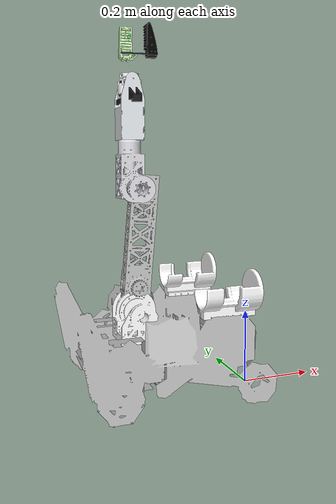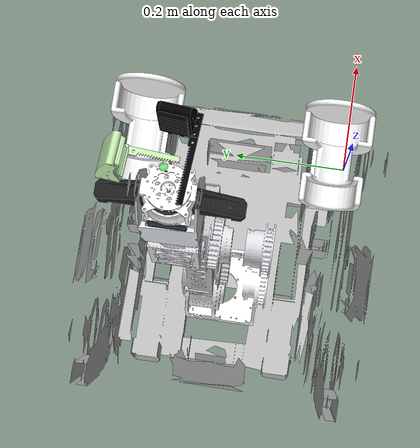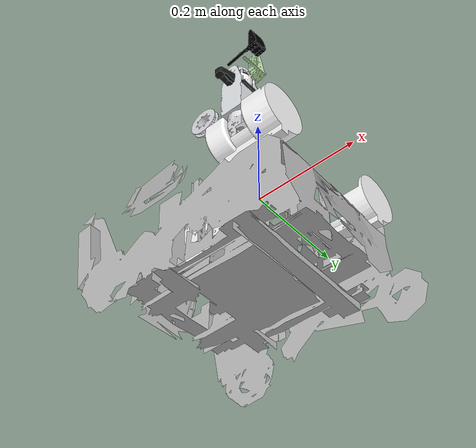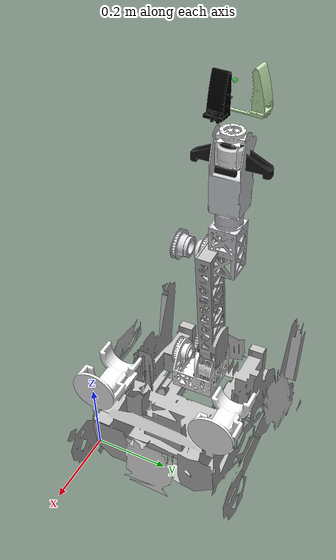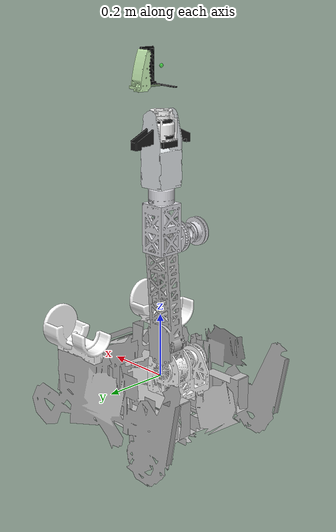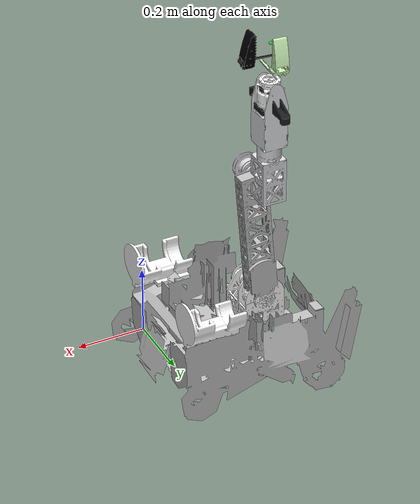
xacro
<?xml version="1.0"?>
<robot xmlns:xacro="http://www.ros.org/wiki/xacro" name="engineer_v4">
    <xacro:arg name="initial_positions_file" default="initial_positions.yaml" />

    <!-- Import engineer_v4 urdf file -->
    <xacro:include filename="$(find engineer_description)/urdf/engineer_v4.urdf" />

    <!-- Import control_xacro -->
    <xacro:include filename="engineer_v4.ros2_control.xacro" />

    <xacro:engineer_v4_ros2_control name="FakeSystem" initial_positions_file="$(arg initial_positions_file)"/>

</robot>

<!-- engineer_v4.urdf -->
<robot
  name="engineer_v4">
  <link
    name="base_link">
    <visual>
      <origin
        xyz="0 0 0"
        rpy="0 0 0" />
      <geometry>
        <mesh
          filename="package://engineer_description/dae/base_link.dae" />
      </geometry>
      <material
        name="">
        <color
          rgba="0.752941176470588 0.752941176470588 0.752941176470588 1" />
      </material>
    </visual>
    <collision>
      <origin
        xyz="0 0 0"
        rpy="0 0 0" />
      <geometry>
        <mesh
          filename="package://engineer_description/collision_dae/base_link.dae" />
      </geometry>
    </collision>
  </link>
  <link
    name="first_slot_link">
    <inertial>
      <origin
        xyz="-0.0299725860567126 -0.0210010541511428 0.000555965757073434"
        rpy="0 0 0" />
      <mass
        value="0.457371475868407" />
      <inertia
        ixx="0.0016314209173607"
        ixy="0.00026727505312052"
        ixz="-7.66197935861787E-05"
        iyy="0.00078447026147815"
        iyz="2.16490673979245E-05"
        izz="0.0016245960496577" />
    </inertial>
    <visual>
      <origin
        xyz="0 0 0"
        rpy="0 0 0" />
      <geometry>
        <mesh
          filename="package://engineer_description/dae/first_slot_link.dae" />
      </geometry>
      <material
        name="">
        <color
          rgba="1 1 1 1" />
      </material>
    </visual>
    <collision>
      <origin
        xyz="0 0 0"
        rpy="0 0 0" />
      <geometry>
        <mesh
          filename="package://engineer_description/collision_dae/first_slot_link.dae" />
      </geometry>
    </collision>
  </link>
  <joint
    name="first_slot_joint"
    type="fixed">
    <origin
      xyz="-0.0472031541832538 0.0300245045193264 0.252923029552021"
      rpy="1.5707963267949 -1.5707963267949 0" />
    <parent
      link="base_link" />
    <child
      link="first_slot_link" />
  </joint>
  <link
    name="second_slot_link">
    <inertial>
      <origin
        xyz="-0.021001166224167 0.0299723666797443 -0.00055561544707089"
        rpy="0 0 0" />
      <mass
        value="0.457374603004739" />
      <inertia
        ixx="0.000784480991192641"
        ixy="-0.000267276658814494"
        ixz="-2.16458688800345E-05"
        iyy="0.00163143018140389"
        iyz="-7.66141894052885E-05"
        izz="0.00162460052222523" />
    </inertial>
    <visual>
      <origin
        xyz="0 0 0"
        rpy="0 0 0" />
      <geometry>
        <mesh
          filename="package://engineer_description/dae/second_slot_link.dae" />
      </geometry>
      <material
        name="">
        <color
          rgba="1 1 1 1" />
      </material>
    </visual>
    <collision>
      <origin
        xyz="0 0 0"
        rpy="0 0 0" />
      <geometry>
        <mesh
          filename="package://engineer_description/collision_dae/second_slot_link.dae" />
      </geometry>
    </collision>
  </link>
  <joint
    name="second_slot_joint"
    type="fixed">
    <origin
      xyz="-0.0472031541832538 0.351024504519326 0.252923029552022"
      rpy="-1.5707963267949 0 3.14159265358979" />
    <parent
      link="base_link" />
    <child
      link="second_slot_link" />
  </joint>
  <link
    name="link1">
    <inertial>
      <origin
        xyz="-0.000357188269648423 0.000760222726987003 0.0730604097875659"
        rpy="0 0 0" />
      <mass
        value="1.2003246264795" />
      <inertia
        ixx="0.00110344971414483"
        ixy="4.36857458704849E-07"
        ixz="-1.06862312344359E-05"
        iyy="0.00168216080239019"
        iyz="8.42838995009528E-06"
        izz="0.00125099173868682" />
    </inertial>
    <visual>
      <origin
        xyz="0 0 0"
        rpy="0 0 0" />
      <geometry>
        <mesh
          filename="package://engineer_description/dae/link1.dae" />
      </geometry>
      <material
        name="">
        <color
          rgba="1 1 1 1" />
      </material>
    </visual>
    <collision>
      <origin
        xyz="0 0 0"
        rpy="0 0 0" />
      <geometry>
        <mesh
          filename="package://engineer_description/collision_dae/link1.dae" />
      </geometry>
    </collision>
  </link>
  <joint
    name="joint1"
    type="revolute">
    <origin
      xyz="-0.26120753672974 0.190524504519326 0.0574255541278649"
      rpy="0 0 3.14159265358979" />
    <parent
      link="base_link" />
    <child
      link="link1" />
    <axis
      xyz="0 0 1" />
    <limit
      lower="-3.14"
      upper="3.14"
      effort="0"
      velocity="0" />
  </joint>
  <link
    name="link2">
    <inertial>
      <origin
        xyz="0.196899648904097 -6.8962282289059E-05 0.0232173591328277"
        rpy="0 0 0" />
      <mass
        value="0.813392084625707" />
      <inertia
        ixx="0.000673036789229952"
        ixy="9.0752917954777E-08"
        ixz="-5.63337289441532E-05"
        iyy="0.0076831561117122"
        iyz="1.5848153385153E-07"
        izz="0.00815581445851113" />
    </inertial>
    <visual>
      <origin
        xyz="0 0 0"
        rpy="0 0 0" />
      <geometry>
        <mesh
          filename="package://engineer_description/dae/link2.dae" />
      </geometry>
      <material
        name="">
        <color
          rgba="0.752941176470588 0.752941176470588 0.752941176470588 1" />
      </material>
    </visual>
    <collision>
      <origin
        xyz="0 0 0"
        rpy="0 0 0" />
      <geometry>
        <mesh
          filename="package://engineer_description/collision_dae/link2.dae" />
      </geometry>
    </collision>
  </link>
  <joint
    name="joint2"
    type="revolute">
    <origin
      xyz="0 0 0.0910000000000011"
      rpy="-1.5707963267949 -1.568 0" />
    <parent
      link="link1" />
    <child
      link="link2" />
    <axis
      xyz="0 0 -1" />
    <limit
      lower="-0.9888"
      upper="1.2000"
      effort="0"
      velocity="0" />
  </joint>
  <link
    name="link3">
    <inertial>
      <origin
        xyz="-0.0183011171276036 -0.0564030679655175 0.0343124536185257"
        rpy="0 0 0" />
      <mass
        value="0.799120380289198" />
      <inertia
        ixx="0.000564646098922074"
        ixy="-1.38701383125454E-05"
        ixz="-1.42774820952325E-06"
        iyy="0.000525908835793181"
        iyz="-5.04104927677511E-06"
        izz="0.000668018718919332" />
    </inertial>
    <visual>
      <origin
        xyz="0 0 0"
        rpy="0 0 0" />
      <geometry>
        <mesh
          filename="package://engineer_description/dae/link3.dae" />
      </geometry>
      <material
        name="">
        <color
          rgba="0.866666666666667 0.866666666666667 0.890196078431372 1" />
      </material>
    </visual>
    <collision>
      <origin
        xyz="0 0 0"
        rpy="0 0 0" />
      <geometry>
        <mesh
          filename="package://engineer_description/collision_dae/link3.dae" />
      </geometry>
    </collision>
  </link>
  <joint
    name="joint3"
    type="revolute">
    <origin
      xyz="0.389999999999999 0 0"
      rpy="-3.14159265358979 0 -1.89" />
    <parent
      link="link2" />
    <child
      link="link3" />
    <axis
      xyz="0 0 1" />
    <limit
      lower="-2.8624"
      upper="2.6543"
      effort="0"
      velocity="0" />
  </joint>
  <link
    name="link4">
    <inertial>
      <origin
        xyz="-1.85366305129886E-05 0.00353819121598634 -0.210577010456394"
        rpy="0 0 0" />
      <mass
        value="0.451620229714316" />
      <inertia
        ixx="0.000450940900760466"
        ixy="-5.15815844889911E-08"
        ixz="-2.49726005905619E-08"
        iyy="0.000475467864605353"
        iyz="5.42674576797712E-10"
        izz="0.000173374319286848" />
    </inertial>
    <visual>
      <origin
        xyz="0 0 0"
        rpy="0 0 0" />
      <geometry>
        <mesh
          filename="package://engineer_description/dae/link4.dae" />
      </geometry>
      <material
        name="">
        <color
          rgba="0.898039215686275 0.917647058823529 0.929411764705882 1" />
      </material>
    </visual>
    <collision>
      <origin
        xyz="0 0 0"
        rpy="0 0 0" />
      <geometry>
        <mesh
          filename="package://engineer_description/collision_dae/link4.dae" />
      </geometry>
    </collision>
  </link>
  <joint
    name="joint4"
    type="revolute">
    <origin
      xyz="0 0 0.0591999999999989"
      rpy="1.5707963267949 0 2.82801601798317" />
    <parent
      link="link3" />
    <child
      link="link4" />
    <axis
      xyz="0 0 -1" />
    <limit
      lower="-3.14"
      upper="3.14"
      effort="0"
      velocity="0" />
  </joint>
  <link
    name="link5">
    <inertial>
      <origin
        xyz="0.0236461854249562 0.000252585259627791 -3.10582093318579E-06"
        rpy="0 0 0" />
      <mass
        value="0.386292385114177" />
      <inertia
        ixx="0.000206580198244635"
        ixy="1.16898826944609E-07"
        ixz="-1.22627594636964E-08"
        iyy="0.000128593321208887"
        iyz="-3.66505131431251E-09"
        izz="0.000117816851749595" />
    </inertial>
    <visual>
      <origin
        xyz="0 0 0"
        rpy="0 0 0" />
      <geometry>
        <mesh
          filename="package://engineer_description/dae/link5.dae" />
      </geometry>
      <material
        name="">
        <color
          rgba="1 1 1 1" />
      </material>
    </visual>
    <collision>
      <origin
        xyz="0 0 0"
        rpy="0 0 0" />
      <geometry>
        <mesh
          filename="package://engineer_description/collision_dae/link5.dae" />
      </geometry>
    </collision>
  </link>
  <joint
    name="joint5"
    type="revolute">
    <origin
      xyz="0 0 -0.314999999999995"
      rpy="1.5707963267949 -1.5707963267949 0" />
    <parent
      link="link4" />
    <child
      link="link5" />
    <axis
      xyz="0 0 -1" />
    <limit
      lower="-1.6828"
      upper="1.6828"
      effort="0"
      velocity="0" />
  </joint>
  <link
    name="link6">
    <inertial>
      <origin
        xyz="-2.92607973814696E-06 -2.88445725311615E-05 0.0543651305617022"
        rpy="0 0 0" />
      <mass
        value="0.288814280860144" />
      <inertia
        ixx="0.000215298648963599"
        ixy="-1.1564148562091E-05"
        ixz="-2.94525426553043E-09"
        iyy="7.55153561166776E-05"
        iyz="-4.25732713011413E-08"
        izz="0.000255880381587993" />
    </inertial>
    <visual>
      <origin
        xyz="0 0 0"
        rpy="0 0 0" />
      <geometry>
        <mesh
          filename="package://engineer_description/dae/link6.dae" />
      </geometry>
      <material
        name="">
        <color
          rgba="0.113725490196078 0.113725490196078 0.113725490196078 1" />
      </material>
    </visual>
    <collision>
      <origin
        xyz="0 0 0"
        rpy="0 0 0" />
      <geometry>
        <mesh
          filename="package://engineer_description/collision_dae/link6.dae" />
      </geometry>
    </collision>
  </link>
  <joint
    name="joint6"
    type="revolute">
    <origin
      xyz="0 0 0"
      rpy="3.13387314293277 1.5707963267949 0" />
    <parent
      link="link5" />
    <child
      link="link6" />
    <axis
      xyz="0 0 1" />
    <limit
      lower="-3.14"
      upper="3.14"
      effort="0"
      velocity="0" />
  </joint>
  <link
    name="right_finger_link">
    <inertial>
      <origin
        xyz="0.061259614914889 -0.00106641408212199 0.0351652091113552"
        rpy="0 0 0" />
      <mass
        value="0.0874237376139129" />
      <inertia
        ixx="3.87878846405327E-05"
        ixy="-5.98747994572176E-08"
        ixz="3.56630615088067E-06"
        iyy="4.0710808114335E-05"
        iyz="8.07405202409304E-09"
        izz="1.30816147228006E-05" />
    </inertial>
    <visual>
      <origin
        xyz="0 0 0"
        rpy="0 0 0" />
      <geometry>
        <mesh
          filename="package://engineer_description/dae/right_finger_link.dae" />
      </geometry>
      <material
        name="">
        <color
          rgba="0 0 0 1" />
      </material>
    </visual>
    <collision>
      <origin
        xyz="0 0 0"
        rpy="0 0 0" />
      <geometry>
        <mesh
          filename="package://engineer_description/collision_dae/right_finger_link.dae" />
      </geometry>
    </collision>
  </link>
  <joint
    name="right_finger_joint"
    type="prismatic">
    <origin
      xyz="0 0 0.076"
      rpy="0 0 -1.6526" />
    <parent
      link="link6" />
    <child
      link="right_finger_link" />
    <axis
      xyz="-1 0 0" />
    <limit
      lower="-3.14"
      upper="3.14"
      effort="0"
      velocity="0" />
    <mimic joint="left_finger_joint" />
  </joint>
  <link
    name="left_finger_link">
    <inertial>
      <origin
        xyz="-0.0616953855224335 0.00100446362083845 0.0362236300960044"
        rpy="0 0 0" />
      <mass
        value="0.0842574260316998" />
      <inertia
        ixx="3.87666538055204E-05"
        ixy="-5.98747994570901E-08"
        ixz="-3.56630615087811E-06"
        iyy="4.05793075596116E-05"
        iyz="-7.99767382292093E-09"
        izz="1.29501141680779E-05" />
    </inertial>
    <visual>
      <origin
        xyz="0 0 0"
        rpy="0 0 0" />
      <geometry>
        <mesh
          filename="package://engineer_description/dae/left_finger_link.dae" />
      </geometry>
      <material
        name="">
        <color
          rgba="0.8 0.956862745098039 0.72156862745098 1" />
      </material>
    </visual>
    <collision>
      <origin
        xyz="0 0 0"
        rpy="0 0 0" />
      <geometry>
        <mesh
          filename="package://engineer_description/collision_dae/left_finger_link.dae" />
      </geometry>
    </collision>
  </link>
  <joint
    name="left_finger_joint"
    type="prismatic">
    <origin
      xyz="0 0 0.076"
      rpy="0 0 -1.6526" />
    <parent
      link="link6" />
    <child
      link="left_finger_link" />
    <axis
      xyz="1 0 0" />
    <limit
      lower="0.0000"
      upper="0.0470"
      effort="0"
      velocity="0" />
  </joint>
  <link name="tcp_link">
    <visual>
      <origin xyz="0 0 0" rpy="0 0 0" />
      <geometry>
        <!-- 半径设为 1cm，方便观察 -->
        <sphere radius="0.005" />
      </geometry>
      <material name="green_transparent">
        <color rgba="0 1 0 0.5" />
      </material>
    </visual>
  </link>
  <joint name="tcp_joint" type="fixed">
    <origin xyz="0 0 0.125" rpy="0 0 0" />
    <parent link="link6" />
    <child link="tcp_link" />
  </joint>
</robot>
